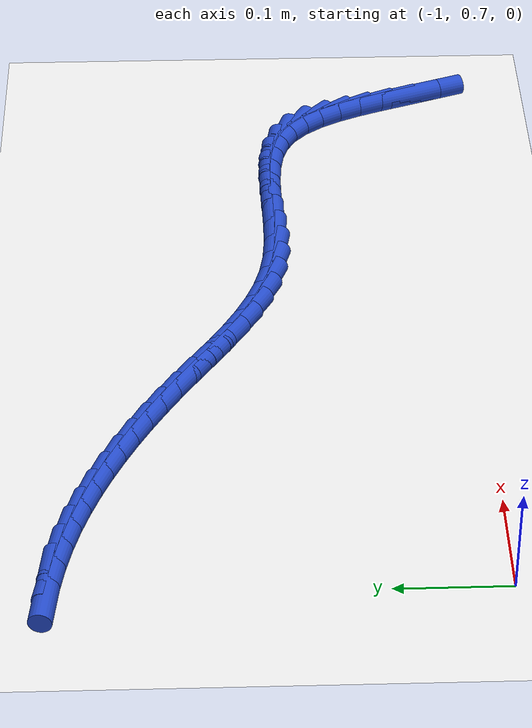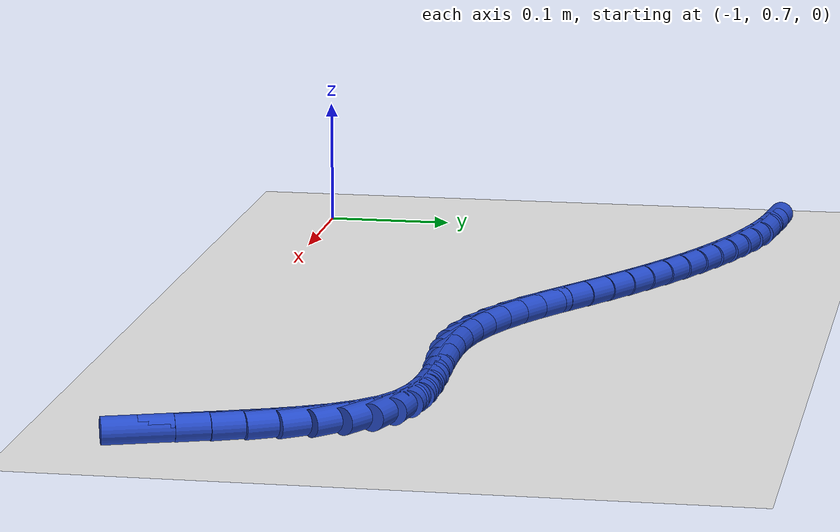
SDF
<sdf version="1.6">
 <world name="default">
  <model name="ground_plane">
   <static>1</static>
   <link name="link">
    <collision name="collision">
     <geometry><plane><normal>0 0 1</normal><size>100 100</size></plane></geometry>
     <surface><friction><ode><mu>100</mu><mu2>50</mu2></ode></friction></surface>
    </collision>
    <visual name="visual">
     <cast_shadows>0</cast_shadows>
     <geometry><plane><normal>0 0 1</normal><size>100 100</size></plane></geometry>
     <material>
      <script><uri>file://media/materials/scripts/gazebo.material</uri><name>Gazebo/WhiteGlow</name></script>
     </material>
    </visual>
   </link>
  </model>
  <model name="line">
   <link name="link_35">
    <pose>-0.3068652876379082 0.7204620540384924 0.01 0 1.57 -1.2357343900301756</pose>
    <collision name="collision">
     <geometry><cylinder><radius>0.01</radius><length>0.08</length></cylinder></geometry>
    </collision>
    <visual name="visual">
     <material>
      <script><name>Gazebo/Blue</name><uri>file://media/materials/scripts/gazebo.material</uri></script>
     </material>
     <geometry><cylinder><radius>0.01</radius><length>0.08</length></cylinder></geometry>
    </visual>
   </link>
   <link name="link_36">
    <pose>-0.3152367540301653 0.7445048265165728 0.01 0 1.57 -1.2362050926118568</pose>
    <collision name="collision">
     <geometry><cylinder><radius>0.01</radius><length>0.08</length></cylinder></geometry>
    </collision>
    <visual name="visual">
     <material>
      <script><name>Gazebo/Blue</name><uri>file://media/materials/scripts/gazebo.material</uri></script>
     </material>
     <geometry><cylinder><radius>0.01</radius><length>0.08</length></cylinder></geometry>
    </visual>
   </link>
   <link name="link_37">
    <pose>-0.3234705072059704 0.7681879797386707 0.01 0 1.57 -1.2121487212611668</pose>
    <collision name="collision">
     <geometry><cylinder><radius>0.01</radius><length>0.08</length></cylinder></geometry>
    </collision>
    <visual name="visual">
     <material>
      <script><name>Gazebo/Blue</name><uri>file://media/materials/scripts/gazebo.material</uri></script>
     </material>
     <geometry><cylinder><radius>0.01</radius><length>0.08</length></cylinder></geometry>
    </visual>
   </link>
   <link name="link_38">
    <pose>-0.3320057780550288 0.7909572246367476 0.01 0 1.57 -1.1600889613823067</pose>
    <collision name="collision">
     <geometry><cylinder><radius>0.01</radius><length>0.08</length></cylinder></geometry>
    </collision>
    <visual name="visual">
     <material>
      <script><name>Gazebo/Blue</name><uri>file://media/materials/scripts/gazebo.material</uri></script>
     </material>
     <geometry><cylinder><radius>0.01</radius><length>0.08</length></cylinder></geometry>
    </visual>
   </link>
   <link name="link_39">
    <pose>-0.3412817974670458 0.8122582721427647 0.01 0 1.57 -1.0738345291637859</pose>
    <collision name="collision">
     <geometry><cylinder><radius>0.01</radius><length>0.08</length></cylinder></geometry>
    </collision>
    <visual name="visual">
     <material>
      <script><name>Gazebo/Blue</name><uri>file://media/materials/scripts/gazebo.material</uri></script>
     </material>
     <geometry><cylinder><radius>0.01</radius><length>0.08</length></cylinder></geometry>
    </visual>
   </link>
   <link name="link_40">
    <pose>-0.35173779633172675 0.8315368331886831 0.01 0 1.57 -0.9448074644204885</pose>
    <collision name="collision">
     <geometry><cylinder><radius>0.01</radius><length>0.08</length></cylinder></geometry>
    </collision>
    <visual name="visual">
     <material>
      <script><name>Gazebo/Blue</name><uri>file://media/materials/scripts/gazebo.material</uri></script>
     </material>
     <geometry><cylinder><radius>0.01</radius><length>0.08</length></cylinder></geometry>
    </visual>
   </link>
   <link name="link_41">
    <pose>-0.3638130055387768 0.8482386187064637 0.01 0 1.57 -0.7650818004135495</pose>
    <collision name="collision">
     <geometry><cylinder><radius>0.01</radius><length>0.08</length></cylinder></geometry>
    </collision>
    <visual name="visual">
     <material>
      <script><name>Gazebo/Blue</name><uri>file://media/materials/scripts/gazebo.material</uri></script>
     </material>
     <geometry><cylinder><radius>0.01</radius><length>0.08</length></cylinder></geometry>
    </visual>
   </link>
   <link name="link_42">
    <pose>-0.37794665597790156 0.8618093396280683 0.01 0 1.57 -0.5375890672606776</pose>
    <collision name="collision">
     <geometry><cylinder><radius>0.01</radius><length>0.08</length></cylinder></geometry>
    </collision>
    <visual name="visual">
     <material>
      <script><name>Gazebo/Blue</name><uri>file://media/materials/scripts/gazebo.material</uri></script>
     </material>
     <geometry><cylinder><radius>0.01</radius><length>0.08</length></cylinder></geometry>
    </visual>
   </link>
   <link name="link_43">
    <pose>-0.39456369777900524 0.8717157075281345 0.01 0 1.57 -0.3182826824693751</pose>
    <collision name="collision">
     <geometry><cylinder><radius>0.01</radius><length>0.08</length></cylinder></geometry>
    </collision>
    <visual name="visual">
     <material>
      <script><name>Gazebo/Blue</name><uri>file://media/materials/scripts/gazebo.material</uri></script>
     </material>
     <geometry><cylinder><radius>0.01</radius><length>0.08</length></cylinder></geometry>
    </visual>
   </link>
   <link name="link_44">
    <pose>-0.4136865420439354 0.8780163897602654 0.01 0 1.57 -0.15961761285592488</pose>
    <collision name="collision">
     <geometry><cylinder><radius>0.01</radius><length>0.08</length></cylinder></geometry>
    </collision>
    <visual name="visual">
     <material>
      <script><name>Gazebo/Blue</name><uri>file://media/materials/scripts/gazebo.material</uri></script>
     </material>
     <geometry><cylinder><radius>0.01</radius><length>0.08</length></cylinder></geometry>
    </visual>
   </link>
   <link name="link_45">
    <pose>-0.43488901940216934 0.8814297159330017 0.01 0 1.57 -0.05595362354177722</pose>
    <collision name="collision">
     <geometry><cylinder><radius>0.01</radius><length>0.08</length></cylinder></geometry>
    </collision>
    <visual name="visual">
     <material>
      <script><name>Gazebo/Blue</name><uri>file://media/materials/scripts/gazebo.material</uri></script>
     </material>
     <geometry><cylinder><radius>0.01</radius><length>0.08</length></cylinder></geometry>
    </visual>
   </link>
   <link name="link_46">
    <pose>-0.45772143756704936 0.8827086073967373 0.01 0 1.57 0.00427363072407046</pose>
    <collision name="collision">
     <geometry><cylinder><radius>0.01</radius><length>0.08</length></cylinder></geometry>
    </collision>
    <visual name="visual">
     <material>
      <script><name>Gazebo/Blue</name><uri>file://media/materials/scripts/gazebo.material</uri></script>
     </material>
     <geometry><cylinder><radius>0.01</radius><length>0.08</length></cylinder></geometry>
    </visual>
   </link>
   <link name="link_47">
    <pose>-0.48173410425191826 0.8826059855018659 0.01 0 1.57 0.029543489717894778</pose>
    <collision name="collision">
     <geometry><cylinder><radius>0.01</radius><length>0.08</length></cylinder></geometry>
    </collision>
    <visual name="visual">
     <material>
      <script><name>Gazebo/Blue</name><uri>file://media/materials/scripts/gazebo.material</uri></script>
     </material>
     <geometry><cylinder><radius>0.01</radius><length>0.08</length></cylinder></geometry>
    </visual>
   </link>
   <link name="link_48">
    <pose>-0.5064773271701184 0.8818747715987816 0.01 0 1.57 0.024247263220846523</pose>
    <collision name="collision">
     <geometry><cylinder><radius>0.01</radius><length>0.08</length></cylinder></geometry>
    </collision>
    <visual name="visual">
     <material>
      <script><name>Gazebo/Blue</name><uri>file://media/materials/scripts/gazebo.material</uri></script>
     </material>
     <geometry><cylinder><radius>0.01</radius><length>0.08</length></cylinder></geometry>
    </visual>
   </link>
   <link name="link_49">
    <pose>-0.5315014140349924 0.8812678870378782 0.01 0 1.57 -0.01087719400204119</pose>
    <collision name="collision">
     <geometry><cylinder><radius>0.01</radius><length>0.08</length></cylinder></geometry>
    </collision>
    <visual name="visual">
     <material>
      <script><name>Gazebo/Blue</name><uri>file://media/materials/scripts/gazebo.material</uri></script>
     </material>
     <geometry><cylinder><radius>0.01</radius><length>0.08</length></cylinder></geometry>
    </visual>
   </link>
   <link name="link_50">
    <pose>-0.5563566725598825 0.8815382531695493 0.01 0 1.57 -0.07825545742557245</pose>
    <collision name="collision">
     <geometry><cylinder><radius>0.01</radius><length>0.08</length></cylinder></geometry>
    </collision>
    <visual name="visual">
     <material>
      <script><name>Gazebo/Blue</name><uri>file://media/materials/scripts/gazebo.material</uri></script>
     </material>
     <geometry><cylinder><radius>0.01</radius><length>0.08</length></cylinder></geometry>
    </visual>
   </link>
   <link name="link_51">
    <pose>-0.5805934104581311 0.8834387913441889 0.01 0 1.57 -0.1804151709257667</pose>
    <collision name="collision">
     <geometry><cylinder><radius>0.01</radius><length>0.08</length></cylinder></geometry>
    </collision>
    <visual name="visual">
     <material>
      <script><name>Gazebo/Blue</name><uri>file://media/materials/scripts/gazebo.material</uri></script>
     </material>
     <geometry><cylinder><radius>0.01</radius><length>0.08</length></cylinder></geometry>
    </visual>
   </link>
   <link name="link_52">
    <pose>-0.6037916870424657 0.8876701217298072 0.01 0 1.57 -0.29135477854531094</pose>
    <collision name="collision">
     <geometry><cylinder><radius>0.01</radius><length>0.08</length></cylinder></geometry>
    </collision>
    <visual name="visual">
     <material>
      <script><name>Gazebo/Blue</name><uri>file://media/materials/scripts/gazebo.material</uri></script>
     </material>
     <geometry><cylinder><radius>0.01</radius><length>0.08</length></cylinder></geometry>
    </visual>
   </link>
   <link name="link_53">
    <pose>-0.6258927199051869 0.8942979740871754 0.01 0 1.57 -0.38834163661386867</pose>
    <collision name="collision">
     <geometry><cylinder><radius>0.01</radius><length>0.08</length></cylinder></geometry>
    </collision>
    <visual name="visual">
     <material>
      <script><name>Gazebo/Blue</name><uri>file://media/materials/scripts/gazebo.material</uri></script>
     </material>
     <geometry><cylinder><radius>0.01</radius><length>0.08</length></cylinder></geometry>
    </visual>
   </link>
   <link name="link_54">
    <pose>-0.6470782069305792 0.902965331035034 0.01 0 1.57 -0.4681032326094543</pose>
    <collision name="collision">
     <geometry><cylinder><radius>0.01</radius><length>0.08</length></cylinder></geometry>
    </collision>
    <visual name="visual">
     <material>
      <script><name>Gazebo/Blue</name><uri>file://media/materials/scripts/gazebo.material</uri></script>
     </material>
     <geometry><cylinder><radius>0.01</radius><length>0.08</length></cylinder></geometry>
    </visual>
   </link>
   <link name="link_55">
    <pose>-0.6675342036274943 0.9133075148000129 0.01 0 1.57 -0.5294474183096988</pose>
    <collision name="collision">
     <geometry><cylinder><radius>0.01</radius><length>0.08</length></cylinder></geometry>
    </collision>
    <visual name="visual">
     <material>
      <script><name>Gazebo/Blue</name><uri>file://media/materials/scripts/gazebo.material</uri></script>
     </material>
     <geometry><cylinder><radius>0.01</radius><length>0.08</length></cylinder></geometry>
    </visual>
   </link>
   <link name="link_56">
    <pose>-0.6874467655047829 0.9249598476087415 0.01 0 1.57 -0.5722999264462207</pose>
    <collision name="collision">
     <geometry><cylinder><radius>0.01</radius><length>0.08</length></cylinder></geometry>
    </collision>
    <visual name="visual">
     <material>
      <script><name>Gazebo/Blue</name><uri>file://media/materials/scripts/gazebo.material</uri></script>
     </material>
     <geometry><cylinder><radius>0.01</radius><length>0.08</length></cylinder></geometry>
    </visual>
   </link>
   <link name="link_57">
    <pose>-0.7070019480712963 0.9375576516878492 0.01 0 1.57 -0.5970910571866964</pose>
    <collision name="collision">
     <geometry><cylinder><radius>0.01</radius><length>0.08</length></cylinder></geometry>
    </collision>
    <visual name="visual">
     <material>
      <script><name>Gazebo/Blue</name><uri>file://media/materials/scripts/gazebo.material</uri></script>
     </material>
     <geometry><cylinder><radius>0.01</radius><length>0.08</length></cylinder></geometry>
    </visual>
   </link>
   <link name="link_58">
    <pose>-0.7263858068358859 0.9507362492639659 0.01 0 1.57 -0.6043211610480936</pose>
    <collision name="collision">
     <geometry><cylinder><radius>0.01</radius><length>0.08</length></cylinder></geometry>
    </collision>
    <visual name="visual">
     <material>
      <script><name>Gazebo/Blue</name><uri>file://media/materials/scripts/gazebo.material</uri></script>
     </material>
     <geometry><cylinder><radius>0.01</radius><length>0.08</length></cylinder></geometry>
    </visual>
   </link>
   <link name="link_59">
    <pose>-0.7457843973074021 0.9641309625637203 0.01 0 1.57 -0.5943682129795287</pose>
    <collision name="collision">
     <geometry><cylinder><radius>0.01</radius><length>0.08</length></cylinder></geometry>
    </collision>
    <visual name="visual">
     <material>
      <script><name>Gazebo/Blue</name><uri>file://media/materials/scripts/gazebo.material</uri></script>
     </material>
     <geometry><cylinder><radius>0.01</radius><length>0.08</length></cylinder></geometry>
    </visual>
   </link>
   <link name="link_60">
    <pose>-0.7653832554394021 0.9773778454273696 0.01 0 1.57 -0.5719724468831541</pose>
    <collision name="collision">
     <geometry><cylinder><radius>0.01</radius><length>0.08</length></cylinder></geometry>
    </collision>
    <visual name="visual">
     <material>
      <script><name>Gazebo/Blue</name><uri>file://media/materials/scripts/gazebo.material</uri></script>
     </material>
     <geometry><cylinder><radius>0.01</radius><length>0.08</length></cylinder></geometry>
    </visual>
   </link>
   <link name="link_61">
    <pose>-0.7853045043248059 0.9902022467391866 0.01 0 1.57 -0.5460568582457422</pose>
    <collision name="collision">
     <geometry><cylinder><radius>0.01</radius><length>0.08</length></cylinder></geometry>
    </collision>
    <visual name="visual">
     <material>
      <script><name>Gazebo/Blue</name><uri>file://media/materials/scripts/gazebo.material</uri></script>
     </material>
     <geometry><cylinder><radius>0.01</radius><length>0.08</length></cylinder></geometry>
    </visual>
   </link>
   <link name="link_62">
    <pose>-0.8055468147203727 1.002503355227305 0.01 0 1.57 -0.5175092670493209</pose>
    <collision name="collision">
     <geometry><cylinder><radius>0.01</radius><length>0.08</length></cylinder></geometry>
    </collision>
    <visual name="visual">
     <material>
      <script><name>Gazebo/Blue</name><uri>file://media/materials/scripts/gazebo.material</uri></script>
     </material>
     <geometry><cylinder><radius>0.01</radius><length>0.08</length></cylinder></geometry>
    </visual>
   </link>
   <link name="link_63">
    <pose>-0.826094632221733 1.0142003908308201 0.01 0 1.57 -0.48616508533799296</pose>
    <collision name="collision">
     <geometry><cylinder><radius>0.01</radius><length>0.08</length></cylinder></geometry>
    </collision>
    <visual name="visual">
     <material>
      <script><name>Gazebo/Blue</name><uri>file://media/materials/scripts/gazebo.material</uri></script>
     </material>
     <geometry><cylinder><radius>0.01</radius><length>0.08</length></cylinder></geometry>
    </visual>
   </link>
   <link name="link_64">
    <pose>-0.8469324024245178 1.0252125734888275 0.01 0 1.57 -0.4518498195295138</pose>
    <collision name="collision">
     <geometry><cylinder><radius>0.01</radius><length>0.08</length></cylinder></geometry>
    </collision>
    <visual name="visual">
     <material>
      <script><name>Gazebo/Blue</name><uri>file://media/materials/scripts/gazebo.material</uri></script>
     </material>
     <geometry><cylinder><radius>0.01</radius><length>0.08</length></cylinder></geometry>
    </visual>
   </link>
   <link name="link_65">
    <pose>-0.8680445709243582 1.0354591231404222 0.01 0 1.57 -0.41438499198066575</pose>
    <collision name="collision">
     <geometry><cylinder><radius>0.01</radius><length>0.08</length></cylinder></geometry>
    </collision>
    <visual name="visual">
     <material>
      <script><name>Gazebo/Blue</name><uri>file://media/materials/scripts/gazebo.material</uri></script>
     </material>
     <geometry><cylinder><radius>0.01</radius><length>0.08</length></cylinder></geometry>
    </visual>
   </link>
   <link name="link_66">
    <pose>-0.8894155833168846 1.0448592597247 0.01 0 1.57 -0.37359635693045407</pose>
    <collision name="collision">
     <geometry><cylinder><radius>0.01</radius><length>0.08</length></cylinder></geometry>
    </collision>
    <visual name="visual">
     <material>
      <script><name>Gazebo/Blue</name><uri>file://media/materials/scripts/gazebo.material</uri></script>
     </material>
     <geometry><cylinder><radius>0.01</radius><length>0.08</length></cylinder></geometry>
    </visual>
   </link>
   <link name="link_67">
    <pose>-0.9110298851977281 1.0533322031807562 0.01 0 1.57 -0.3293249491597048</pose>
    <collision name="collision">
     <geometry><cylinder><radius>0.01</radius><length>0.08</length></cylinder></geometry>
    </collision>
    <visual name="visual">
     <material>
      <script><name>Gazebo/Blue</name><uri>file://media/materials/scripts/gazebo.material</uri></script>
     </material>
     <geometry><cylinder><radius>0.01</radius><length>0.08</length></cylinder></geometry>
    </visual>
   </link>
   <link name="link_68">
    <pose>-0.9328719221625197 1.060797173447686 0.01 0 1.57 -0.28144138073006025</pose>
    <collision name="collision">
     <geometry><cylinder><radius>0.01</radius><length>0.08</length></cylinder></geometry>
    </collision>
    <visual name="visual">
     <material>
      <script><name>Gazebo/Blue</name><uri>file://media/materials/scripts/gazebo.material</uri></script>
     </material>
     <geometry><cylinder><radius>0.01</radius><length>0.08</length></cylinder></geometry>
    </visual>
   </link>
   <link name="link_69">
    <pose>-0.9549261398068898 1.0671733904645846 0.01 0 1.57 -0.2298634976252178</pose>
    <collision name="collision">
     <geometry><cylinder><radius>0.01</radius><length>0.08</length></cylinder></geometry>
    </collision>
    <visual name="visual">
     <material>
      <script><name>Gazebo/Blue</name><uri>file://media/materials/scripts/gazebo.material</uri></script>
     </material>
     <geometry><cylinder><radius>0.01</radius><length>0.08</length></cylinder></geometry>
    </visual>
   </link>
   <link name="link_70">
    <pose>-0.9771769837264694 1.072380074170548 0.01 0 1.57 -0.1745769533860519</pose>
    <collision name="collision">
     <geometry><cylinder><radius>0.01</radius><length>0.08</length></cylinder></geometry>
    </collision>
    <visual name="visual">
     <material>
      <script><name>Gazebo/Blue</name><uri>file://media/materials/scripts/gazebo.material</uri></script>
     </material>
     <geometry><cylinder><radius>0.01</radius><length>0.08</length></cylinder></geometry>
    </visual>
   </link>
   <link name="link_71">
    <pose>-0.9996088995168895 1.0763364445046708 0.01 0 1.57 -0.11567164917365573</pose>
    <collision name="collision">
     <geometry><cylinder><radius>0.01</radius><length>0.08</length></cylinder></geometry>
    </collision>
    <visual name="visual">
     <material>
      <script><name>Gazebo/Blue</name><uri>file://media/materials/scripts/gazebo.material</uri></script>
     </material>
     <geometry><cylinder><radius>0.01</radius><length>0.08</length></cylinder></geometry>
    </visual>
   </link>
  </model>
 </world>
</sdf>
